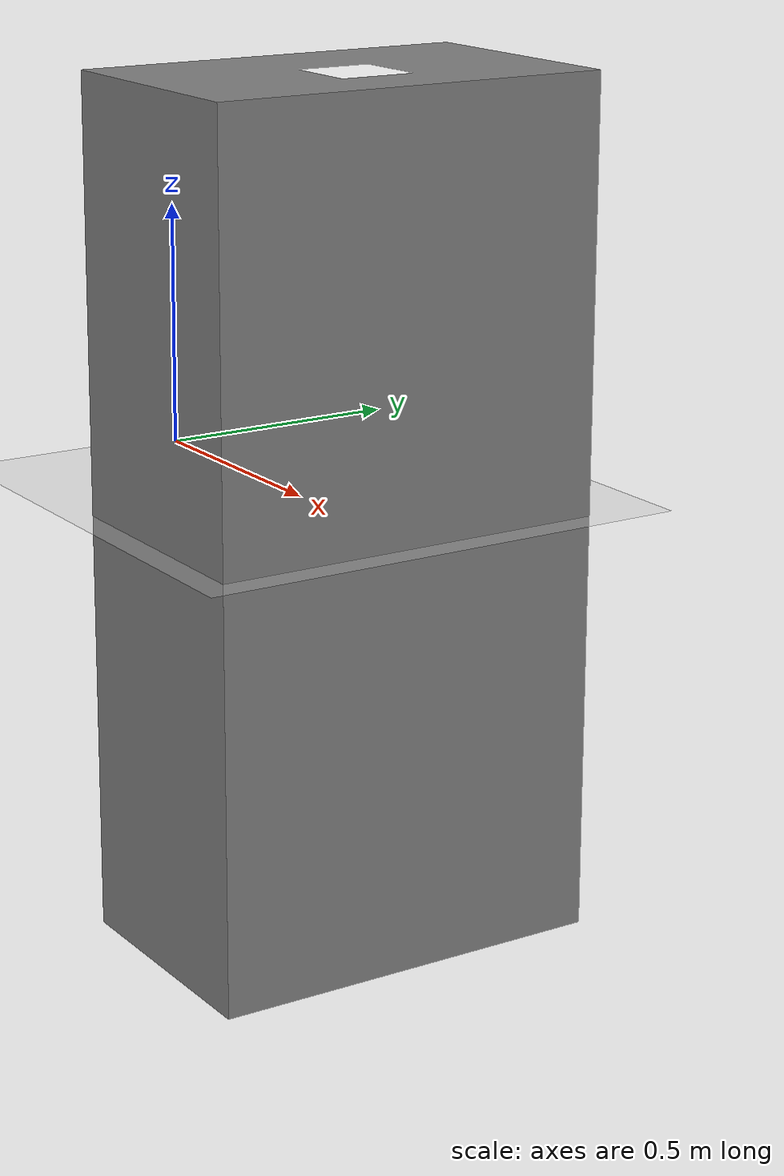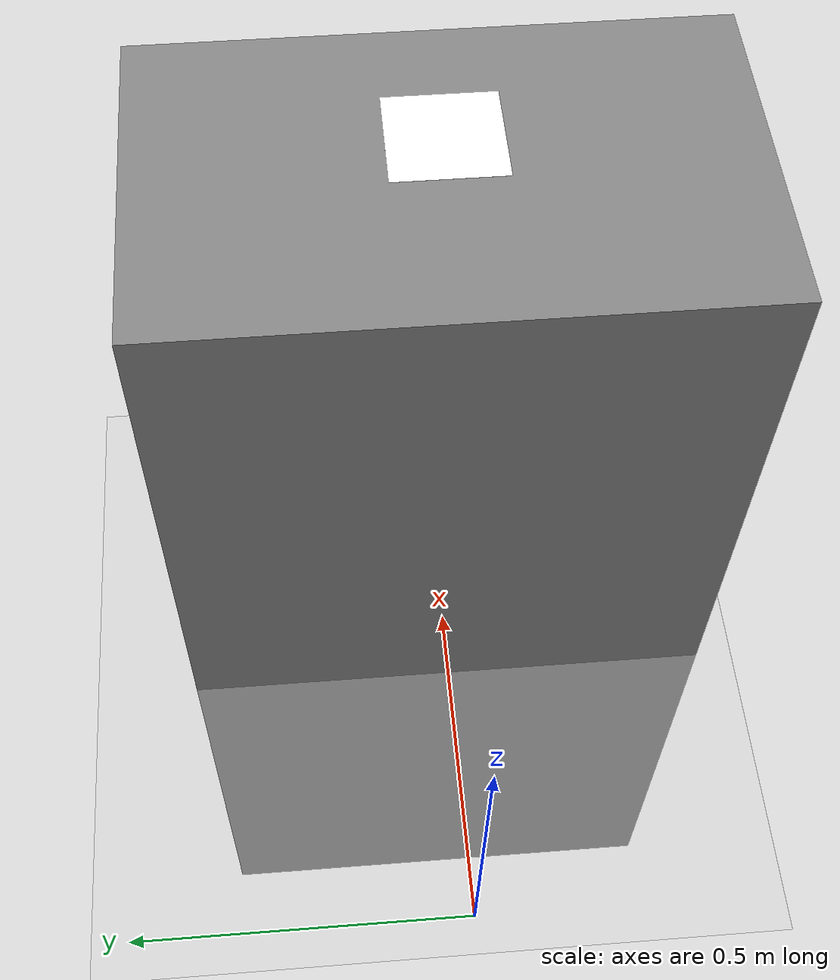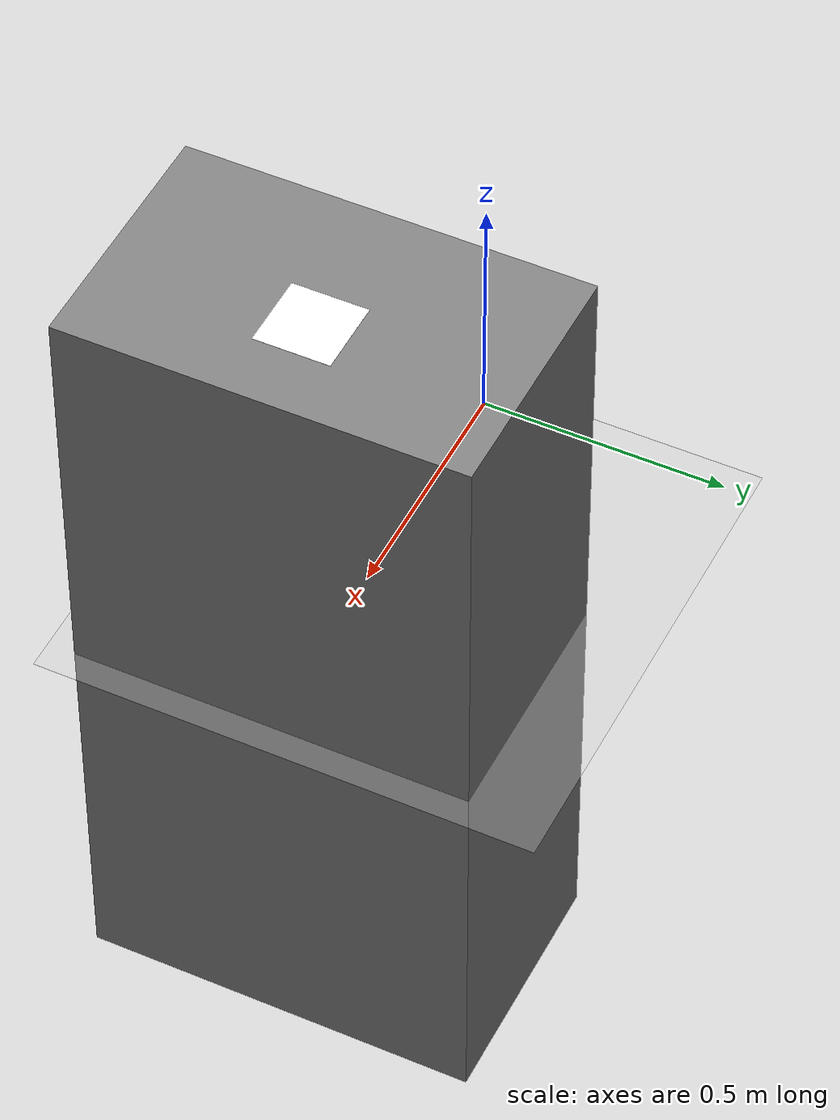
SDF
<?xml version="1.0" ?>

<sdf version="1.9">
  <world name="cam_scene">
    <plugin
      filename="ignition-gazebo-physics-system"
      name="ignition::gazebo::systems::Physics">
    </plugin>
    <plugin
      filename="ignition-gazebo-user-commands-system"
      name="ignition::gazebo::systems::UserCommands">
    </plugin>
    <plugin
      filename="ignition-gazebo-scene-broadcaster-system"
      name="ignition::gazebo::systems::SceneBroadcaster">
    </plugin>
    <plugin
      filename="ignition-gazebo-sensors-system"
      name="ignition::gazebo::systems::Sensors">
      <render_engine>ogre2</render_engine>
    </plugin>

    <gui fullscreen="0">

      <!-- 3D scene -->
      <plugin filename="MinimalScene" name="3D View">
        <gz-gui>
          <title>3D View</title>
          <property type="bool" key="showTitleBar">false</property>
          <property type="string" key="state">docked</property>
        </gz-gui>

        <engine>ogre2</engine>
        <scene>scene</scene>
        <ambient_light>0.4 0.4 0.4</ambient_light>
        <background_color>0.8 0.8 0.8</background_color>
        <!-- Here we set initial camera pose -->
        <camera_pose>1.06 0.94 1.78 0.0 0.43 -2.34</camera_pose>
        <camera_clip>
          <near>0.25</near>
          <far>25000</far>
        </camera_clip>
      </plugin>

      <!-- Plugins that add functionality to the scene -->
      <!-- Rest of the plugins to implement default GUI -->
      <plugin filename="GzSceneManager" name="Scene Manager">
        <gz-gui>
          <property key="resizable" type="bool">false</property>
          <property key="width" type="double">5</property>
          <property key="height" type="double">5</property>
          <property key="state" type="string">floating</property>
          <property key="showTitleBar" type="bool">false</property>
        </gz-gui>
      </plugin>
      <plugin filename="EntityContextMenuPlugin" name="Entity context menu">
        <ignition-gui>
          <property key="state" type="string">floating</property>
          <property key="width" type="double">5</property>
          <property key="height" type="double">5</property>
          <property key="showTitleBar" type="bool">false</property>
        </ignition-gui>
      </plugin>
      <plugin filename="InteractiveViewControl" name="Interactive view control">
        <ignition-gui>
          <property key="resizable" type="bool">false</property>
          <property key="width" type="double">5</property>
          <property key="height" type="double">5</property>
          <property key="state" type="string">floating</property>
          <property key="showTitleBar" type="bool">false</property>
        </ignition-gui>
      </plugin>
      <plugin filename="CameraTracking" name="Camera Tracking">
        <ignition-gui>
          <property key="resizable" type="bool">false</property>
          <property key="width" type="double">5</property>
          <property key="height" type="double">5</property>
          <property key="state" type="string">floating</property>
          <property key="showTitleBar" type="bool">false</property>
        </ignition-gui>
      </plugin>
      <plugin filename="MarkerManager" name="Marker manager">
        <ignition-gui>
          <property key="resizable" type="bool">false</property>
          <property key="width" type="double">5</property>
          <property key="height" type="double">5</property>
          <property key="state" type="string">floating</property>
          <property key="showTitleBar" type="bool">false</property>
        </ignition-gui>
      </plugin>
      <plugin filename="SelectEntities" name="Select Entities">
        <ignition-gui>
          <anchors target="Select entities">
            <line own="right" target="right" />
            <line own="top" target="top" />
          </anchors>
          <property key="resizable" type="bool">false</property>
          <property key="width" type="double">5</property>
          <property key="height" type="double">5</property>
          <property key="state" type="string">floating</property>
          <property key="showTitleBar" type="bool">false</property>
        </ignition-gui>
      </plugin>
      <plugin filename="VisualizationCapabilities" name="Visualization Capabilities">
        <ignition-gui>
          <property key="resizable" type="bool">false</property>
          <property key="width" type="double">5</property>
          <property key="height" type="double">5</property>
          <property key="state" type="string">floating</property>
          <property key="showTitleBar" type="bool">false</property>
        </ignition-gui>
      </plugin>
      <plugin filename="Spawn" name="Spawn Entities">
        <ignition-gui>
          <anchors target="Select entities">
            <line own="right" target="right" />
            <line own="top" target="top" />
          </anchors>
          <property key="resizable" type="bool">false</property>
          <property key="width" type="double">5</property>
          <property key="height" type="double">5</property>
          <property key="state" type="string">floating</property>
          <property key="showTitleBar" type="bool">false</property>
        </ignition-gui>
      </plugin>
      <plugin filename="WorldControl" name="World control">
        <ignition-gui>
          <title>World control</title>
          <property type="bool" key="showTitleBar">false</property>
          <property type="bool" key="resizable">false</property>
          <property type="double" key="height">72</property>
          <property type="double" key="width">121</property>
          <property type="double" key="z">1</property>
          <property type="string" key="state">floating</property>
          <anchors target="3D View">
            <line own="left" target="left" />
            <line own="bottom" target="bottom" />
          </anchors>
        </ignition-gui>
        <play_pause>true</play_pause>
        <step>true</step>
        <start_paused>true</start_paused>
        <use_event>true</use_event>
      </plugin>
      <plugin filename="WorldStats" name="World stats">
        <ignition-gui>
          <title>World stats</title>
          <property type="bool" key="showTitleBar">false</property>
          <property type="bool" key="resizable">false</property>
          <property type="double" key="height">110</property>
          <property type="double" key="width">290</property>
          <property type="double" key="z">1</property>
          <property type="string" key="state">floating</property>
          <anchors target="3D View">
            <line own="right" target="right" />
            <line own="bottom" target="bottom" />
          </anchors>
        </ignition-gui>
        <sim_time>true</sim_time>
        <real_time>true</real_time>
        <real_time_factor>true</real_time_factor>
        <iterations>true</iterations>
      </plugin>
      <plugin filename="Shapes" name="Shapes">
        <ignition-gui>
          <property key="resizable" type="bool">false</property>
          <property key="x" type="double">0</property>
          <property key="y" type="double">0</property>
          <property key="width" type="double">250</property>
          <property key="height" type="double">50</property>
          <property key="state" type="string">floating</property>
          <property key="showTitleBar" type="bool">false</property>
          <property key="cardBackground" type="string">#666666</property>
        </ignition-gui>
      </plugin>
      <plugin filename="Lights" name="Lights">
        <ignition-gui>
          <property key="resizable" type="bool">false</property>
          <property key="x" type="double">250</property>
          <property key="y" type="double">0</property>
          <property key="width" type="double">150</property>
          <property key="height" type="double">50</property>
          <property key="state" type="string">floating</property>
          <property key="showTitleBar" type="bool">false</property>
          <property key="cardBackground" type="string">#666666</property>
        </ignition-gui>
      </plugin>
      <plugin filename="TransformControl" name="Transform control">
        <ignition-gui>
          <property key="resizable" type="bool">false</property>
          <property key="x" type="double">0</property>
          <property key="y" type="double">50</property>
          <property key="width" type="double">250</property>
          <property key="height" type="double">50</property>
          <property key="state" type="string">floating</property>
          <property key="showTitleBar" type="bool">false</property>
          <property key="cardBackground" type="string">#777777</property>
        </ignition-gui>
        <legacy>false</legacy>
      </plugin>
      <plugin filename="Screenshot" name="Screenshot">
        <ignition-gui>
          <property key="resizable" type="bool">false</property>
          <property key="x" type="double">250</property>
          <property key="y" type="double">50</property>
          <property key="width" type="double">50</property>
          <property key="height" type="double">50</property>
          <property key="state" type="string">floating</property>
          <property key="showTitleBar" type="bool">false</property>
          <property key="cardBackground" type="string">#777777</property>
        </ignition-gui>
      </plugin>
      <plugin filename="VideoRecorder" name="VideoRecorder">
        <ignition-gui>
          <property key="resizable" type="bool">false</property>
          <property key="x" type="double">300</property>
          <property key="y" type="double">50</property>
          <property key="width" type="double">50</property>
          <property key="height" type="double">50</property>
          <property key="state" type="string">floating</property>
          <property key="showTitleBar" type="bool">false</property>
          <property key="cardBackground" type="string">#777777</property>
        </ignition-gui>
        <record_video>
          <use_sim_time>true</use_sim_time>
          <lockstep>true</lockstep>
          <bitrate>4000000</bitrate>
        </record_video>
        <legacy>false</legacy>
      </plugin>
      <plugin filename="ComponentInspector" name="Component inspector">
        <ignition-gui>
          <property type="string" key="state">docked</property>
        </ignition-gui>
      </plugin>
      <plugin filename="EntityTree" name="Entity tree">
        <ignition-gui>
          <property type="string" key="state">docked</property>
        </ignition-gui>
      </plugin>
      <!-- Image display for camera topic -->
       <!-- Image Display Plugins for visualization -->
      <plugin filename="ImageDisplay" name="Image Display">
        <ignition-gui />
        <topic>/camera/image</topic>
      </plugin>

    </gui>

    <light type="directional" name="sun">
      <cast_shadows>true</cast_shadows>
      <pose>0 0 10 0 0 0</pose>
      <diffuse>0.8 0.8 0.8 1</diffuse>
      <specular>0.2 0.2 0.2 1</specular>
      <attenuation>
        <range>1000</range>
        <constant>0.9</constant>
        <linear>0.01</linear>
        <quadratic>0.001</quadratic>
      </attenuation>
      <direction>-0.5 0.1 -0.9</direction>
    </light>

    <model name="ground_plane">
      <static>true</static>
      <link name="link">
        <collision name="collision">
          <geometry>
            <plane>
              <normal>0 0 1</normal>
              <size>100 100</size>
            </plane>
          </geometry>
        </collision>
        <visual name="visual">
          <geometry>
            <plane>
              <normal>0 0 1</normal>
              <size>100 100</size>
            </plane>
          </geometry>
          <material>
            <ambient>0.8 0.8 0.8 1</ambient>
            <diffuse>0.8 0.8 0.8 1</diffuse>
            <specular>0.8 0.8 0.8 1</specular>
          </material>
        </visual>
      </link>
    </model>

    <include>
      <uri>model://table</uri>
      <name>table1</name>
      <pose> 0.65 0 0 0 0 0</pose>
    </include>

    <include>
      <uri>model://aruco_marker_0_100mm</uri>
      <name>marker</name>
      <pose> 0.7 0 0.845 0.0 0.0 0</pose>
    </include>

  </world>
</sdf>

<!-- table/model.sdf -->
<sdf version='1.9'>
  <model name='table'>
    <static>true</static>
    <link name='table'>
      <pose>0 0 0 0 -0 0</pose>
      <inertial>
        <pose>0 0.04617 0.38 0 -0 0</pose>
        <mass>35.4321</mass>
        <inertia>
          <ixx>1.73083</ixx>
          <ixy>2.01582e-11</ixy>
          <ixz>2.78594e-13</ixz>
          <iyy>5.32936</iyy>
          <iyz>4.32952e-13</iyz>
          <izz>3.81098</izz>
        </inertia>
      </inertial>
      <collision name='table_collision'>
        <pose>0 0 0 0 -0 0</pose>
        <geometry>
          <box>
            <size>0.5 0.8 1.69</size>
          </box>
        </geometry>
      </collision>
      <visual name='table_visual'>
        <pose>0 0 0 0 -0 0</pose>
        <geometry>
          <box>
            <size>0.5 0.8 1.685</size>
          </box>
        </geometry>
        <material>
          <diffuse>0.5 0.5 0.5 1</diffuse>
          <specular>0.5 0.5 0.5 1</specular>
          <ambient>0.5 0.5 0.5 1</ambient>
        </material>
      </visual>
    </link>
  </model>
</sdf>

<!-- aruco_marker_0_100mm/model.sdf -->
<sdf version="1.9">
  <model name="aruco_default">
    <static>true</static>
    <link name="aruco_link">
      <visual name="aruco_visual">
        <geometry>
          <plane>
            <normal>0 0 1</normal>
            <size>0.15 0.15</size>
          </plane>
        </geometry>
        <material>
          <diffuse>1 1 1 1</diffuse>
          <specular>0.4 0.4 0.4 1</specular>
          <pbr>
            <metal>
              <albedo_map>materials/textures/aruco_0.png</albedo_map>
            </metal>
          </pbr>
        </material>
      </visual>
    </link>
  </model>
</sdf>
